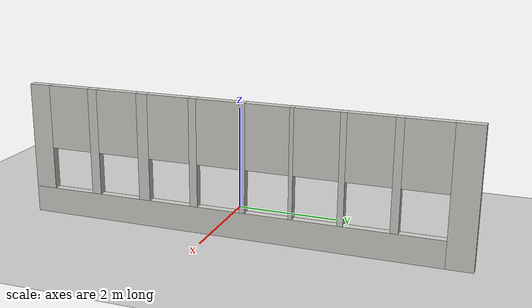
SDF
<sdf version="1.6">
 <world name="default">
  <model name="ground_plane">
   <static>1</static>
   <link name="link">
    <collision name="collision">
     <geometry><plane><normal>0 0 1</normal><size>100 100</size></plane></geometry>
     <surface>
      <contact><collide_bitmask>65535</collide_bitmask></contact>
      <friction><ode><mu>100</mu><mu2>50</mu2></ode></friction>
     </surface>
    </collision>
    <visual name="visual">
     <cast_shadows>0</cast_shadows>
     <geometry><plane><normal>0 0 1</normal><size>100 100</size></plane></geometry>
     <material>
      <script><uri>file://media/materials/scripts/gazebo.material</uri><name>Gazebo/Grey</name></script>
     </material>
    </visual>
   </link>
  </model>
  <model name="AutowayTower">
   <link name="Wall_33">
    <pose>-0.545738 1.46553 0 0 -0 0</pose>
    <visual name="Wall_33_Visual_0">
     <pose>-3.88869 0 1.25 0 -0 0</pose>
     <geometry><box><size>0.472613 0.15 2.5</size></box></geometry>
     <material>
      <script><uri>file://media/materials/scripts/gazebo.material</uri><name>Gazebo/CeilingTiled</name></script>
      <ambient>1 1 1 1</ambient>
      <shader type="pixel"/>
      <diffuse>1 1 1 1</diffuse>
      <specular>0 0 0 1</specular>
      <emissive>0 0 0 1</emissive>
     </material>
     <meta><layer>0</layer></meta>
    </visual>
    <visual name="Wall_33_Visual_1">
     <pose>0.236306 0 0.25 0 -0 0</pose>
     <geometry><box><size>7.77739 0.15 0.5</size></box></geometry>
     <material>
      <script><uri>file://media/materials/scripts/gazebo.material</uri><name>Gazebo/CeilingTiled</name></script>
      <ambient>1 1 1 1</ambient>
      <shader type="pixel"/>
      <diffuse>1 1 1 1</diffuse>
      <specular>0 0 0 1</specular>
      <emissive>0 0 0 1</emissive>
     </material>
     <meta><layer>0</layer></meta>
    </visual>
    <visual name="Wall_33_Visual_2">
     <pose>-2.78016 0 1.5 0 -0 0</pose>
     <geometry><box><size>0.144463 0.15 2</size></box></geometry>
     <material>
      <script><uri>file://media/materials/scripts/gazebo.material</uri><name>Gazebo/CeilingTiled</name></script>
      <ambient>1 1 1 1</ambient>
      <shader type="pixel"/>
      <diffuse>1 1 1 1</diffuse>
      <specular>0 0 0 1</specular>
      <emissive>0 0 0 1</emissive>
     </material>
     <meta><layer>0</layer></meta>
    </visual>
    <visual name="Wall_33_Visual_3">
     <pose>-1.85318 0 1.5 0 -0 0</pose>
     <geometry><box><size>0.109483 0.15 2</size></box></geometry>
     <material>
      <script><uri>file://media/materials/scripts/gazebo.material</uri><name>Gazebo/CeilingTiled</name></script>
      <ambient>1 1 1 1</ambient>
      <shader type="pixel"/>
      <diffuse>1 1 1 1</diffuse>
      <specular>0 0 0 1</specular>
      <emissive>0 0 0 1</emissive>
     </material>
     <meta><layer>0</layer></meta>
    </visual>
    <visual name="Wall_33_Visual_4">
     <pose>-0.961189 0 1.5 0 -0 0</pose>
     <geometry><box><size>0.074503 0.15 2</size></box></geometry>
     <material>
      <script><uri>file://media/materials/scripts/gazebo.material</uri><name>Gazebo/CeilingTiled</name></script>
      <ambient>1 1 1 1</ambient>
      <shader type="pixel"/>
      <diffuse>1 1 1 1</diffuse>
      <specular>0 0 0 1</specular>
      <emissive>0 0 0 1</emissive>
     </material>
     <meta><layer>0</layer></meta>
    </visual>
    <visual name="Wall_33_Visual_5">
     <pose>-0.069196 0 1.5 0 -0 0</pose>
     <geometry><box><size>0.109483 0.15 2</size></box></geometry>
     <material>
      <script><uri>file://media/materials/scripts/gazebo.material</uri><name>Gazebo/CeilingTiled</name></script>
      <ambient>1 1 1 1</ambient>
      <shader type="pixel"/>
      <diffuse>1 1 1 1</diffuse>
      <specular>0 0 0 1</specular>
      <emissive>0 0 0 1</emissive>
     </material>
     <meta><layer>0</layer></meta>
    </visual>
    <visual name="Wall_33_Visual_6">
     <pose>0.857777 0 1.5 0 -0 0</pose>
     <geometry><box><size>0.144463 0.15 2</size></box></geometry>
     <material>
      <script><uri>file://media/materials/scripts/gazebo.material</uri><name>Gazebo/CeilingTiled</name></script>
      <ambient>1 1 1 1</ambient>
      <shader type="pixel"/>
      <diffuse>1 1 1 1</diffuse>
      <specular>0 0 0 1</specular>
      <emissive>0 0 0 1</emissive>
     </material>
     <meta><layer>0</layer></meta>
    </visual>
    <visual name="Wall_33_Visual_7">
     <pose>1.83722 0 1.5 0 -0 0</pose>
     <geometry><box><size>0.214424 0.15 2</size></box></geometry>
     <material>
      <script><uri>file://media/materials/scripts/gazebo.material</uri><name>Gazebo/CeilingTiled</name></script>
      <ambient>1 1 1 1</ambient>
      <shader type="pixel"/>
      <diffuse>1 1 1 1</diffuse>
      <specular>0 0 0 1</specular>
      <emissive>0 0 0 1</emissive>
     </material>
     <meta><layer>0</layer></meta>
    </visual>
    <visual name="Wall_33_Visual_8">
     <pose>2.83415 0 1.5 0 -0 0</pose>
     <geometry><box><size>0.179443 0.15 2</size></box></geometry>
     <material>
      <script><uri>file://media/materials/scripts/gazebo.material</uri><name>Gazebo/CeilingTiled</name></script>
      <ambient>1 1 1 1</ambient>
      <shader type="pixel"/>
      <diffuse>1 1 1 1</diffuse>
      <specular>0 0 0 1</specular>
      <emissive>0 0 0 1</emissive>
     </material>
     <meta><layer>0</layer></meta>
    </visual>
    <visual name="Wall_33_Visual_9">
     <pose>3.92444 0 1.5 0 -0 0</pose>
     <geometry><box><size>0.401124 0.15 2</size></box></geometry>
     <material>
      <script><uri>file://media/materials/scripts/gazebo.material</uri><name>Gazebo/CeilingTiled</name></script>
      <ambient>1 1 1 1</ambient>
      <shader type="pixel"/>
      <diffuse>1 1 1 1</diffuse>
      <specular>0 0 0 1</specular>
      <emissive>0 0 0 1</emissive>
     </material>
     <meta><layer>0</layer></meta>
    </visual>
    <visual name="Wall_33_Visual_10">
     <pose>-3.25239 0 1.9 0 -0 0</pose>
     <geometry><box><size>0.8 0.15 1.2</size></box></geometry>
     <material>
      <script><uri>file://media/materials/scripts/gazebo.material</uri><name>Gazebo/CeilingTiled</name></script>
      <ambient>1 1 1 1</ambient>
      <shader type="pixel"/>
      <diffuse>1 1 1 1</diffuse>
      <specular>0 0 0 1</specular>
      <emissive>0 0 0 1</emissive>
     </material>
     <meta><layer>0</layer></meta>
    </visual>
    <visual name="Wall_33_Visual_11">
     <pose>-2.30792 0 1.9 0 -0 0</pose>
     <geometry><box><size>0.8 0.15 1.2</size></box></geometry>
     <material>
      <script><uri>file://media/materials/scripts/gazebo.material</uri><name>Gazebo/CeilingTiled</name></script>
      <ambient>1 1 1 1</ambient>
      <shader type="pixel"/>
      <diffuse>1 1 1 1</diffuse>
      <specular>0 0 0 1</specular>
      <emissive>0 0 0 1</emissive>
     </material>
     <meta><layer>0</layer></meta>
    </visual>
    <visual name="Wall_33_Visual_12">
     <pose>-1.39844 0 1.9 0 -0 0</pose>
     <geometry><box><size>0.8 0.15 1.2</size></box></geometry>
     <material>
      <script><uri>file://media/materials/scripts/gazebo.material</uri><name>Gazebo/CeilingTiled</name></script>
      <ambient>1 1 1 1</ambient>
      <shader type="pixel"/>
      <diffuse>1 1 1 1</diffuse>
      <specular>0 0 0 1</specular>
      <emissive>0 0 0 1</emissive>
     </material>
     <meta><layer>0</layer></meta>
    </visual>
    <visual name="Wall_33_Visual_13">
     <pose>-0.523938 0 1.9 0 -0 0</pose>
     <geometry><box><size>0.8 0.15 1.2</size></box></geometry>
     <material>
      <script><uri>file://media/materials/scripts/gazebo.material</uri><name>Gazebo/CeilingTiled</name></script>
      <ambient>1 1 1 1</ambient>
      <shader type="pixel"/>
      <diffuse>1 1 1 1</diffuse>
      <specular>0 0 0 1</specular>
      <emissive>0 0 0 1</emissive>
     </material>
     <meta><layer>0</layer></meta>
    </visual>
    <visual name="Wall_33_Visual_14">
     <pose>0.385546 0 1.9 0 -0 0</pose>
     <geometry><box><size>0.8 0.15 1.2</size></box></geometry>
     <material>
      <script><uri>file://media/materials/scripts/gazebo.material</uri><name>Gazebo/CeilingTiled</name></script>
      <ambient>1 1 1 1</ambient>
      <shader type="pixel"/>
      <diffuse>1 1 1 1</diffuse>
      <specular>0 0 0 1</specular>
      <emissive>0 0 0 1</emissive>
     </material>
     <meta><layer>0</layer></meta>
    </visual>
    <visual name="Wall_33_Visual_15">
     <pose>1.33001 0 1.9 0 -0 0</pose>
     <geometry><box><size>0.8 0.15 1.2</size></box></geometry>
     <material>
      <script><uri>file://media/materials/scripts/gazebo.material</uri><name>Gazebo/CeilingTiled</name></script>
      <ambient>1 1 1 1</ambient>
      <shader type="pixel"/>
      <diffuse>1 1 1 1</diffuse>
      <specular>0 0 0 1</specular>
      <emissive>0 0 0 1</emissive>
     </material>
     <meta><layer>0</layer></meta>
    </visual>
    <visual name="Wall_33_Visual_16">
     <pose>2.34443 0 1.9 0 -0 0</pose>
     <geometry><box><size>0.8 0.15 1.2</size></box></geometry>
     <material>
      <script><uri>file://media/materials/scripts/gazebo.material</uri><name>Gazebo/CeilingTiled</name></script>
      <ambient>1 1 1 1</ambient>
      <shader type="pixel"/>
      <diffuse>1 1 1 1</diffuse>
      <specular>0 0 0 1</specular>
      <emissive>0 0 0 1</emissive>
     </material>
     <meta><layer>0</layer></meta>
    </visual>
    <visual name="Wall_33_Visual_17">
     <pose>3.32388 0 1.9 0 -0 0</pose>
     <geometry><box><size>0.8 0.15 1.2</size></box></geometry>
     <material>
      <script><uri>file://media/materials/scripts/gazebo.material</uri><name>Gazebo/CeilingTiled</name></script>
      <ambient>1 1 1 1</ambient>
      <shader type="pixel"/>
      <diffuse>1 1 1 1</diffuse>
      <specular>0 0 0 1</specular>
      <emissive>0 0 0 1</emissive>
     </material>
     <meta><layer>0</layer></meta>
    </visual>
    <collision name="Wall_33_Collision_0">
     <pose>-3.88869 0 1.25 0 -0 0</pose>
     <geometry><box><size>0.472613 0.15 2.5</size></box></geometry>
     <surface>
      <friction>
       <ode><mu>1</mu><mu2>1</mu2><fdir1>0 0 0</fdir1><slip1>0</slip1><slip2>0</slip2></ode>
       <torsional>
        <coefficient>1</coefficient>
        <patch_radius>0</patch_radius>
        <surface_radius>0</surface_radius>
        <use_patch_radius>1</use_patch_radius>
        <ode><slip>0</slip></ode>
       </torsional>
      </friction>
      <bounce><restitution_coefficient>0</restitution_coefficient><threshold>1e+06</threshold></bounce>
      <contact>
       <collide_without_contact>0</collide_without_contact>
       <collide_without_contact_bitmask>1</collide_without_contact_bitmask>
       <collide_bitmask>1</collide_bitmask>
       <ode>
        <soft_cfm>0</soft_cfm>
        <soft_erp>0.2</soft_erp>
        <kp>1e+13</kp>
        <kd>1</kd>
        <max_vel>0.01</max_vel>
        <min_depth>0</min_depth>
       </ode>
       <bullet>
        <split_impulse>1</split_impulse>
        <split_impulse_penetration_threshold>-0.01</split_impulse_penetration_threshold>
        <soft_cfm>0</soft_cfm>
        <soft_erp>0.2</soft_erp>
        <kp>1e+13</kp>
        <kd>1</kd>
       </bullet>
      </contact>
     </surface>
    </collision>
    <collision name="Wall_33_Collision_1">
     <pose>0.236306 0 0.25 0 -0 0</pose>
     <geometry><box><size>7.77739 0.15 0.5</size></box></geometry>
     <surface>
      <friction>
       <ode><mu>1</mu><mu2>1</mu2><fdir1>0 0 0</fdir1><slip1>0</slip1><slip2>0</slip2></ode>
       <torsional>
        <coefficient>1</coefficient>
        <patch_radius>0</patch_radius>
        <surface_radius>0</surface_radius>
        <use_patch_radius>1</use_patch_radius>
        <ode><slip>0</slip></ode>
       </torsional>
      </friction>
      <bounce><restitution_coefficient>0</restitution_coefficient><threshold>1e+06</threshold></bounce>
      <contact>
       <collide_without_contact>0</collide_without_contact>
       <collide_without_contact_bitmask>1</collide_without_contact_bitmask>
       <collide_bitmask>1</collide_bitmask>
       <ode>
        <soft_cfm>0</soft_cfm>
        <soft_erp>0.2</soft_erp>
        <kp>1e+13</kp>
        <kd>1</kd>
        <max_vel>0.01</max_vel>
        <min_depth>0</min_depth>
       </ode>
       <bullet>
        <split_impulse>1</split_impulse>
        <split_impulse_penetration_threshold>-0.01</split_impulse_penetration_threshold>
        <soft_cfm>0</soft_cfm>
        <soft_erp>0.2</soft_erp>
        <kp>1e+13</kp>
        <kd>1</kd>
       </bullet>
      </contact>
     </surface>
    </collision>
    <collision name="Wall_33_Collision_2">
     <pose>-2.78016 0 1.5 0 -0 0</pose>
     <geometry><box><size>0.144463 0.15 2</size></box></geometry>
     <surface>
      <friction>
       <ode><mu>1</mu><mu2>1</mu2><fdir1>0 0 0</fdir1><slip1>0</slip1><slip2>0</slip2></ode>
       <torsional>
        <coefficient>1</coefficient>
        <patch_radius>0</patch_radius>
        <surface_radius>0</surface_radius>
        <use_patch_radius>1</use_patch_radius>
        <ode><slip>0</slip></ode>
       </torsional>
      </friction>
      <bounce><restitution_coefficient>0</restitution_coefficient><threshold>1e+06</threshold></bounce>
      <contact>
       <collide_without_contact>0</collide_without_contact>
       <collide_without_contact_bitmask>1</collide_without_contact_bitmask>
       <collide_bitmask>1</collide_bitmask>
       <ode>
        <soft_cfm>0</soft_cfm>
        <soft_erp>0.2</soft_erp>
        <kp>1e+13</kp>
        <kd>1</kd>
        <max_vel>0.01</max_vel>
        <min_depth>0</min_depth>
       </ode>
       <bullet>
        <split_impulse>1</split_impulse>
        <split_impulse_penetration_threshold>-0.01</split_impulse_penetration_threshold>
        <soft_cfm>0</soft_cfm>
        <soft_erp>0.2</soft_erp>
        <kp>1e+13</kp>
        <kd>1</kd>
       </bullet>
      </contact>
     </surface>
    </collision>
    <collision name="Wall_33_Collision_3">
     <pose>-1.85318 0 1.5 0 -0 0</pose>
     <geometry><box><size>0.109483 0.15 2</size></box></geometry>
     <surface>
      <friction>
       <ode><mu>1</mu><mu2>1</mu2><fdir1>0 0 0</fdir1><slip1>0</slip1><slip2>0</slip2></ode>
       <torsional>
        <coefficient>1</coefficient>
        <patch_radius>0</patch_radius>
        <surface_radius>0</surface_radius>
        <use_patch_radius>1</use_patch_radius>
        <ode><slip>0</slip></ode>
       </torsional>
      </friction>
      <bounce><restitution_coefficient>0</restitution_coefficient><threshold>1e+06</threshold></bounce>
      <contact>
       <collide_without_contact>0</collide_without_contact>
       <collide_without_contact_bitmask>1</collide_without_contact_bitmask>
       <collide_bitmask>1</collide_bitmask>
       <ode>
        <soft_cfm>0</soft_cfm>
        <soft_erp>0.2</soft_erp>
        <kp>1e+13</kp>
        <kd>1</kd>
        <max_vel>0.01</max_vel>
        <min_depth>0</min_depth>
       </ode>
       <bullet>
        <split_impulse>1</split_impulse>
        <split_impulse_penetration_threshold>-0.01</split_impulse_penetration_threshold>
        <soft_cfm>0</soft_cfm>
        <soft_erp>0.2</soft_erp>
        <kp>1e+13</kp>
        <kd>1</kd>
       </bullet>
      </contact>
     </surface>
    </collision>
    <collision name="Wall_33_Collision_4">
     <pose>-0.961189 0 1.5 0 -0 0</pose>
     <geometry><box><size>0.074503 0.15 2</size></box></geometry>
     <surface>
      <friction>
       <ode><mu>1</mu><mu2>1</mu2><fdir1>0 0 0</fdir1><slip1>0</slip1><slip2>0</slip2></ode>
       <torsional>
        <coefficient>1</coefficient>
        <patch_radius>0</patch_radius>
        <surface_radius>0</surface_radius>
        <use_patch_radius>1</use_patch_radius>
        <ode><slip>0</slip></ode>
       </torsional>
      </friction>
      <bounce><restitution_coefficient>0</restitution_coefficient><threshold>1e+06</threshold></bounce>
      <contact>
       <collide_without_contact>0</collide_without_contact>
       <collide_without_contact_bitmask>1</collide_without_contact_bitmask>
       <collide_bitmask>1</collide_bitmask>
       <ode>
        <soft_cfm>0</soft_cfm>
        <soft_erp>0.2</soft_erp>
        <kp>1e+13</kp>
        <kd>1</kd>
        <max_vel>0.01</max_vel>
        <min_depth>0</min_depth>
       </ode>
       <bullet>
        <split_impulse>1</split_impulse>
        <split_impulse_penetration_threshold>-0.01</split_impulse_penetration_threshold>
        <soft_cfm>0</soft_cfm>
        <soft_erp>0.2</soft_erp>
        <kp>1e+13</kp>
        <kd>1</kd>
       </bullet>
      </contact>
     </surface>
    </collision>
    <collision name="Wall_33_Collision_10">
     <pose>-3.25239 0 1.9 0 -0 0</pose>
     <geometry><box><size>0.8 0.15 1.2</size></box></geometry>
     <surface>
      <friction>
       <ode><mu>1</mu><mu2>1</mu2><fdir1>0 0 0</fdir1><slip1>0</slip1><slip2>0</slip2></ode>
       <torsional>
        <coefficient>1</coefficient>
        <patch_radius>0</patch_radius>
        <surface_radius>0</surface_radius>
        <use_patch_radius>1</use_patch_radius>
        <ode><slip>0</slip></ode>
       </torsional>
      </friction>
      <bounce><restitution_coefficient>0</restitution_coefficient><threshold>1e+06</threshold></bounce>
      <contact>
       <collide_without_contact>0</collide_without_contact>
       <collide_without_contact_bitmask>1</collide_without_contact_bitmask>
       <collide_bitmask>1</collide_bitmask>
       <ode>
        <soft_cfm>0</soft_cfm>
        <soft_erp>0.2</soft_erp>
        <kp>1e+13</kp>
        <kd>1</kd>
        <max_vel>0.01</max_vel>
        <min_depth>0</min_depth>
       </ode>
       <bullet>
        <split_impulse>1</split_impulse>
        <split_impulse_penetration_threshold>-0.01</split_impulse_penetration_threshold>
        <soft_cfm>0</soft_cfm>
        <soft_erp>0.2</soft_erp>
        <kp>1e+13</kp>
        <kd>1</kd>
       </bullet>
      </contact>
     </surface>
    </collision>
    <collision name="Wall_33_Collision_5">
     <pose>-0.069196 0 1.5 0 -0 0</pose>
     <geometry><box><size>0.109483 0.15 2</size></box></geometry>
     <surface>
      <friction>
       <ode><mu>1</mu><mu2>1</mu2><fdir1>0 0 0</fdir1><slip1>0</slip1><slip2>0</slip2></ode>
       <torsional>
        <coefficient>1</coefficient>
        <patch_radius>0</patch_radius>
        <surface_radius>0</surface_radius>
        <use_patch_radius>1</use_patch_radius>
        <ode><slip>0</slip></ode>
       </torsional>
      </friction>
      <bounce><restitution_coefficient>0</restitution_coefficient><threshold>1e+06</threshold></bounce>
      <contact>
       <collide_without_contact>0</collide_without_contact>
       <collide_without_contact_bitmask>1</collide_without_contact_bitmask>
       <collide_bitmask>1</collide_bitmask>
       <ode>
        <soft_cfm>0</soft_cfm>
        <soft_erp>0.2</soft_erp>
        <kp>1e+13</kp>
        <kd>1</kd>
        <max_vel>0.01</max_vel>
        <min_depth>0</min_depth>
       </ode>
       <bullet>
        <split_impulse>1</split_impulse>
        <split_impulse_penetration_threshold>-0.01</split_impulse_penetration_threshold>
        <soft_cfm>0</soft_cfm>
        <soft_erp>0.2</soft_erp>
        <kp>1e+13</kp>
        <kd>1</kd>
       </bullet>
      </contact>
     </surface>
    </collision>
    <collision name="Wall_33_Collision_6">
     <pose>0.857777 0 1.5 0 -0 0</pose>
     <geometry><box><size>0.144463 0.15 2</size></box></geometry>
     <surface>
      <friction>
       <ode><mu>1</mu><mu2>1</mu2><fdir1>0 0 0</fdir1><slip1>0</slip1><slip2>0</slip2></ode>
       <torsional>
        <coefficient>1</coefficient>
        <patch_radius>0</patch_radius>
        <surface_radius>0</surface_radius>
        <use_patch_radius>1</use_patch_radius>
        <ode><slip>0</slip></ode>
       </torsional>
      </friction>
      <bounce><restitution_coefficient>0</restitution_coefficient><threshold>1e+06</threshold></bounce>
      <contact>
       <collide_without_contact>0</collide_without_contact>
       <collide_without_contact_bitmask>1</collide_without_contact_bitmask>
       <collide_bitmask>1</collide_bitmask>
       <ode>
        <soft_cfm>0</soft_cfm>
        <soft_erp>0.2</soft_erp>
        <kp>1e+13</kp>
        <kd>1</kd>
        <max_vel>0.01</max_vel>
        <min_depth>0</min_depth>
       </ode>
       <bullet>
        <split_impulse>1</split_impulse>
        <split_impulse_penetration_threshold>-0.01</split_impulse_penetration_threshold>
        <soft_cfm>0</soft_cfm>
        <soft_erp>0.2</soft_erp>
        <kp>1e+13</kp>
        <kd>1</kd>
       </bullet>
      </contact>
     </surface>
    </collision>
    <collision name="Wall_33_Collision_7">
     <pose>1.83722 0 1.5 0 -0 0</pose>
     <geometry><box><size>0.214424 0.15 2</size></box></geometry>
     <surface>
      <friction>
       <ode><mu>1</mu><mu2>1</mu2><fdir1>0 0 0</fdir1><slip1>0</slip1><slip2>0</slip2></ode>
       <torsional>
        <coefficient>1</coefficient>
        <patch_radius>0</patch_radius>
        <surface_radius>0</surface_radius>
        <use_patch_radius>1</use_patch_radius>
        <ode><slip>0</slip></ode>
       </torsional>
      </friction>
      <bounce><restitution_coefficient>0</restitution_coefficient><threshold>1e+06</threshold></bounce>
      <contact>
       <collide_without_contact>0</collide_without_contact>
       <collide_without_contact_bitmask>1</collide_without_contact_bitmask>
       <collide_bitmask>1</collide_bitmask>
       <ode>
        <soft_cfm>0</soft_cfm>
        <soft_erp>0.2</soft_erp>
        <kp>1e+13</kp>
        <kd>1</kd>
        <max_vel>0.01</max_vel>
        <min_depth>0</min_depth>
       </ode>
       <bullet>
        <split_impulse>1</split_impulse>
        <split_impulse_penetration_threshold>-0.01</split_impulse_penetration_threshold>
        <soft_cfm>0</soft_cfm>
        <soft_erp>0.2</soft_erp>
        <kp>1e+13</kp>
        <kd>1</kd>
       </bullet>
      </contact>
     </surface>
    </collision>
    <collision name="Wall_33_Collision_8">
     <pose>2.83415 0 1.5 0 -0 0</pose>
     <geometry><box><size>0.179443 0.15 2</size></box></geometry>
     <surface>
      <friction>
       <ode><mu>1</mu><mu2>1</mu2><fdir1>0 0 0</fdir1><slip1>0</slip1><slip2>0</slip2></ode>
       <torsional>
        <coefficient>1</coefficient>
        <patch_radius>0</patch_radius>
        <surface_radius>0</surface_radius>
        <use_patch_radius>1</use_patch_radius>
        <ode><slip>0</slip></ode>
       </torsional>
      </friction>
      <bounce><restitution_coefficient>0</restitution_coefficient><threshold>1e+06</threshold></bounce>
      <contact>
       <collide_without_contact>0</collide_without_contact>
       <collide_without_contact_bitmask>1</collide_without_contact_bitmask>
       <collide_bitmask>1</collide_bitmask>
       <ode>
        <soft_cfm>0</soft_cfm>
        <soft_erp>0.2</soft_erp>
        <kp>1e+13</kp>
        <kd>1</kd>
        <max_vel>0.01</max_vel>
        <min_depth>0</min_depth>
       </ode>
       <bullet>
        <split_impulse>1</split_impulse>
        <split_impulse_penetration_threshold>-0.01</split_impulse_penetration_threshold>
        <soft_cfm>0</soft_cfm>
        <soft_erp>0.2</soft_erp>
        <kp>1e+13</kp>
        <kd>1</kd>
       </bullet>
      </contact>
     </surface>
    </collision>
    <collision name="Wall_33_Collision_9">
     <pose>3.92444 0 1.5 0 -0 0</pose>
     <geometry><box><size>0.401124 0.15 2</size></box></geometry>
     <surface>
      <friction>
       <ode><mu>1</mu><mu2>1</mu2><fdir1>0 0 0</fdir1><slip1>0</slip1><slip2>0</slip2></ode>
       <torsional>
        <coefficient>1</coefficient>
        <patch_radius>0</patch_radius>
        <surface_radius>0</surface_radius>
        <use_patch_radius>1</use_patch_radius>
        <ode><slip>0</slip></ode>
       </torsional>
      </friction>
      <bounce><restitution_coefficient>0</restitution_coefficient><threshold>1e+06</threshold></bounce>
      <contact>
       <collide_without_contact>0</collide_without_contact>
       <collide_without_contact_bitmask>1</collide_without_contact_bitmask>
       <collide_bitmask>1</collide_bitmask>
       <ode>
        <soft_cfm>0</soft_cfm>
        <soft_erp>0.2</soft_erp>
        <kp>1e+13</kp>
        <kd>1</kd>
        <max_vel>0.01</max_vel>
        <min_depth>0</min_depth>
       </ode>
       <bullet>
        <split_impulse>1</split_impulse>
        <split_impulse_penetration_threshold>-0.01</split_impulse_penetration_threshold>
        <soft_cfm>0</soft_cfm>
        <soft_erp>0.2</soft_erp>
        <kp>1e+13</kp>
        <kd>1</kd>
       </bullet>
      </contact>
     </surface>
    </collision>
    <collision name="Wall_33_Collision_11">
     <pose>-2.30792 0 1.9 0 -0 0</pose>
     <geometry><box><size>0.8 0.15 1.2</size></box></geometry>
     <surface>
      <friction>
       <ode><mu>1</mu><mu2>1</mu2><fdir1>0 0 0</fdir1><slip1>0</slip1><slip2>0</slip2></ode>
       <torsional>
        <coefficient>1</coefficient>
        <patch_radius>0</patch_radius>
        <surface_radius>0</surface_radius>
        <use_patch_radius>1</use_patch_radius>
        <ode><slip>0</slip></ode>
       </torsional>
      </friction>
      <bounce><restitution_coefficient>0</restitution_coefficient><threshold>1e+06</threshold></bounce>
      <contact>
       <collide_without_contact>0</collide_without_contact>
       <collide_without_contact_bitmask>1</collide_without_contact_bitmask>
       <collide_bitmask>1</collide_bitmask>
       <ode>
        <soft_cfm>0</soft_cfm>
        <soft_erp>0.2</soft_erp>
        <kp>1e+13</kp>
        <kd>1</kd>
        <max_vel>0.01</max_vel>
        <min_depth>0</min_depth>
       </ode>
       <bullet>
        <split_impulse>1</split_impulse>
        <split_impulse_penetration_threshold>-0.01</split_impulse_penetration_threshold>
        <soft_cfm>0</soft_cfm>
        <soft_erp>0.2</soft_erp>
        <kp>1e+13</kp>
        <kd>1</kd>
       </bullet>
      </contact>
     </surface>
    </collision>
    <collision name="Wall_33_Collision_12">
     <pose>-1.39844 0 1.9 0 -0 0</pose>
     <geometry><box><size>0.8 0.15 1.2</size></box></geometry>
     <surface>
      <friction>
       <ode><mu>1</mu><mu2>1</mu2><fdir1>0 0 0</fdir1><slip1>0</slip1><slip2>0</slip2></ode>
       <torsional>
        <coefficient>1</coefficient>
        <patch_radius>0</patch_radius>
        <surface_radius>0</surface_radius>
        <use_patch_radius>1</use_patch_radius>
        <ode><slip>0</slip></ode>
       </torsional>
      </friction>
      <bounce><restitution_coefficient>0</restitution_coefficient><threshold>1e+06</threshold></bounce>
      <contact>
       <collide_without_contact>0</collide_without_contact>
       <collide_without_contact_bitmask>1</collide_without_contact_bitmask>
       <collide_bitmask>1</collide_bitmask>
       <ode>
        <soft_cfm>0</soft_cfm>
        <soft_erp>0.2</soft_erp>
        <kp>1e+13</kp>
        <kd>1</kd>
        <max_vel>0.01</max_vel>
        <min_depth>0</min_depth>
       </ode>
       <bullet>
        <split_impulse>1</split_impulse>
        <split_impulse_penetration_threshold>-0.01</split_impulse_penetration_threshold>
        <soft_cfm>0</soft_cfm>
        <soft_erp>0.2</soft_erp>
        <kp>1e+13</kp>
        <kd>1</kd>
       </bullet>
      </contact>
     </surface>
    </collision>
    <collision name="Wall_33_Collision_13">
     <pose>-0.523938 0 1.9 0 -0 0</pose>
     <geometry><box><size>0.8 0.15 1.2</size></box></geometry>
     <surface>
      <friction>
       <ode><mu>1</mu><mu2>1</mu2><fdir1>0 0 0</fdir1><slip1>0</slip1><slip2>0</slip2></ode>
       <torsional>
        <coefficient>1</coefficient>
        <patch_radius>0</patch_radius>
        <surface_radius>0</surface_radius>
        <use_patch_radius>1</use_patch_radius>
        <ode><slip>0</slip></ode>
       </torsional>
      </friction>
      <bounce><restitution_coefficient>0</restitution_coefficient><threshold>1e+06</threshold></bounce>
      <contact>
       <collide_without_contact>0</collide_without_contact>
       <collide_without_contact_bitmask>1</collide_without_contact_bitmask>
       <collide_bitmask>1</collide_bitmask>
       <ode>
        <soft_cfm>0</soft_cfm>
        <soft_erp>0.2</soft_erp>
        <kp>1e+13</kp>
        <kd>1</kd>
        <max_vel>0.01</max_vel>
        <min_depth>0</min_depth>
       </ode>
       <bullet>
        <split_impulse>1</split_impulse>
        <split_impulse_penetration_threshold>-0.01</split_impulse_penetration_threshold>
        <soft_cfm>0</soft_cfm>
        <soft_erp>0.2</soft_erp>
        <kp>1e+13</kp>
        <kd>1</kd>
       </bullet>
      </contact>
     </surface>
    </collision>
    <collision name="Wall_33_Collision_14">
     <pose>0.385546 0 1.9 0 -0 0</pose>
     <geometry><box><size>0.8 0.15 1.2</size></box></geometry>
     <surface>
      <friction>
       <ode><mu>1</mu><mu2>1</mu2><fdir1>0 0 0</fdir1><slip1>0</slip1><slip2>0</slip2></ode>
       <torsional>
        <coefficient>1</coefficient>
        <patch_radius>0</patch_radius>
        <surface_radius>0</surface_radius>
        <use_patch_radius>1</use_patch_radius>
        <ode><slip>0</slip></ode>
       </torsional>
      </friction>
      <bounce><restitution_coefficient>0</restitution_coefficient><threshold>1e+06</threshold></bounce>
      <contact>
       <collide_without_contact>0</collide_without_contact>
       <collide_without_contact_bitmask>1</collide_without_contact_bitmask>
       <collide_bitmask>1</collide_bitmask>
       <ode>
        <soft_cfm>0</soft_cfm>
        <soft_erp>0.2</soft_erp>
        <kp>1e+13</kp>
        <kd>1</kd>
        <max_vel>0.01</max_vel>
        <min_depth>0</min_depth>
       </ode>
       <bullet>
        <split_impulse>1</split_impulse>
        <split_impulse_penetration_threshold>-0.01</split_impulse_penetration_threshold>
        <soft_cfm>0</soft_cfm>
        <soft_erp>0.2</soft_erp>
        <kp>1e+13</kp>
        <kd>1</kd>
       </bullet>
      </contact>
     </surface>
    </collision>
    <collision name="Wall_33_Collision_15">
     <pose>1.33001 0 1.9 0 -0 0</pose>
     <geometry><box><size>0.8 0.15 1.2</size></box></geometry>
     <surface>
      <friction>
       <ode><mu>1</mu><mu2>1</mu2><fdir1>0 0 0</fdir1><slip1>0</slip1><slip2>0</slip2></ode>
       <torsional>
        <coefficient>1</coefficient>
        <patch_radius>0</patch_radius>
        <surface_radius>0</surface_radius>
        <use_patch_radius>1</use_patch_radius>
        <ode><slip>0</slip></ode>
       </torsional>
      </friction>
      <bounce><restitution_coefficient>0</restitution_coefficient><threshold>1e+06</threshold></bounce>
      <contact>
       <collide_without_contact>0</collide_without_contact>
       <collide_without_contact_bitmask>1</collide_without_contact_bitmask>
       <collide_bitmask>1</collide_bitmask>
       <ode>
        <soft_cfm>0</soft_cfm>
        <soft_erp>0.2</soft_erp>
        <kp>1e+13</kp>
        <kd>1</kd>
        <max_vel>0.01</max_vel>
        <min_depth>0</min_depth>
       </ode>
       <bullet>
        <split_impulse>1</split_impulse>
        <split_impulse_penetration_threshold>-0.01</split_impulse_penetration_threshold>
        <soft_cfm>0</soft_cfm>
        <soft_erp>0.2</soft_erp>
        <kp>1e+13</kp>
        <kd>1</kd>
       </bullet>
      </contact>
     </surface>
    </collision>
    <collision name="Wall_33_Collision_16">
     <pose>2.34443 0 1.9 0 -0 0</pose>
     <geometry><box><size>0.8 0.15 1.2</size></box></geometry>
     <surface>
      <friction>
       <ode><mu>1</mu><mu2>1</mu2><fdir1>0 0 0</fdir1><slip1>0</slip1><slip2>0</slip2></ode>
       <torsional>
        <coefficient>1</coefficient>
        <patch_radius>0</patch_radius>
        <surface_radius>0</surface_radius>
        <use_patch_radius>1</use_patch_radius>
        <ode><slip>0</slip></ode>
       </torsional>
      </friction>
      <bounce><restitution_coefficient>0</restitution_coefficient><threshold>1e+06</threshold></bounce>
      <contact>
       <collide_without_contact>0</collide_without_contact>
       <collide_without_contact_bitmask>1</collide_without_contact_bitmask>
       <collide_bitmask>1</collide_bitmask>
       <ode>
        <soft_cfm>0</soft_cfm>
        <soft_erp>0.2</soft_erp>
        <kp>1e+13</kp>
        <kd>1</kd>
        <max_vel>0.01</max_vel>
        <min_depth>0</min_depth>
       </ode>
       <bullet>
        <split_impulse>1</split_impulse>
        <split_impulse_penetration_threshold>-0.01</split_impulse_penetration_threshold>
        <soft_cfm>0</soft_cfm>
        <soft_erp>0.2</soft_erp>
        <kp>1e+13</kp>
        <kd>1</kd>
       </bullet>
      </contact>
     </surface>
    </collision>
    <collision name="Wall_33_Collision_17">
     <pose>3.32388 0 1.9 0 -0 0</pose>
     <geometry><box><size>0.8 0.15 1.2</size></box></geometry>
     <surface>
      <friction>
       <ode><mu>1</mu><mu2>1</mu2><fdir1>0 0 0</fdir1><slip1>0</slip1><slip2>0</slip2></ode>
       <torsional>
        <coefficient>1</coefficient>
        <patch_radius>0</patch_radius>
        <surface_radius>0</surface_radius>
        <use_patch_radius>1</use_patch_radius>
        <ode><slip>0</slip></ode>
       </torsional>
      </friction>
      <bounce><restitution_coefficient>0</restitution_coefficient><threshold>1e+06</threshold></bounce>
      <contact>
       <collide_without_contact>0</collide_without_contact>
       <collide_without_contact_bitmask>1</collide_without_contact_bitmask>
       <collide_bitmask>1</collide_bitmask>
       <ode>
        <soft_cfm>0</soft_cfm>
        <soft_erp>0.2</soft_erp>
        <kp>1e+13</kp>
        <kd>1</kd>
        <max_vel>0.01</max_vel>
        <min_depth>0</min_depth>
       </ode>
       <bullet>
        <split_impulse>1</split_impulse>
        <split_impulse_penetration_threshold>-0.01</split_impulse_penetration_threshold>
        <soft_cfm>0</soft_cfm>
        <soft_erp>0.2</soft_erp>
        <kp>1e+13</kp>
        <kd>1</kd>
       </bullet>
      </contact>
     </surface>
    </collision>
   </link>
   <static>1</static>
   <pose>3e-06 0 0 0 0 -1.57</pose>
  </model>
 </world>
</sdf>
